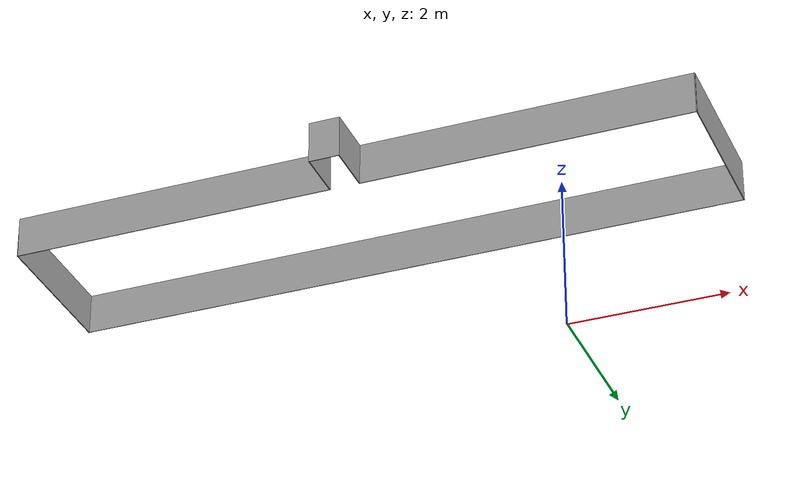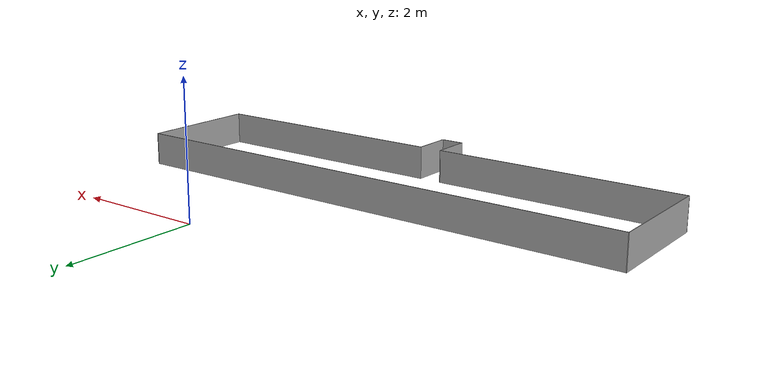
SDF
<?xml version='1.0'?>
<sdf version='1.6'>
  <model name='single_parking_space'>
    <pose frame=''>-1.335 -3.09483 0 0 -0 0</pose>
    <link name='Wall_12'>
      <collision name='Wall_12_Collision'>
        <geometry>
          <box>
            <size>1.86 0.01 0.5</size>
          </box>
        </geometry>
        <pose frame=''>0 0 0.25 0 -0 0</pose>
      </collision>
      <visual name='Wall_12_Visual'>
        <pose frame=''>0 0 0.25 0 -0 0</pose>
        <geometry>
          <box>
            <size>1.86 0.01 0.5</size>
          </box>
        </geometry>
        <material>
          <script>
            <uri>file://media/materials/scripts/gazebo.material</uri>
            <name>Gazebo/Grey</name>
          </script>
          <ambient>1 1 1 1</ambient>
        </material>
        <meta>
          <layer>0</layer>
        </meta>
      </visual>
      <pose frame=''>-4.025 0.299831 0 0 -0 1.5708</pose>
    </link>
    <link name='Wall_13'>
      <collision name='Wall_13_Collision'>
        <geometry>
          <box>
            <size>8.06 0.01 0.5</size>
          </box>
        </geometry>
        <pose frame=''>0 0 0.25 0 -0 0</pose>
      </collision>
      <visual name='Wall_13_Visual'>
        <pose frame=''>0 0 0.25 0 -0 0</pose>
        <geometry>
          <box>
            <size>8.06 0.01 0.5</size>
          </box>
        </geometry>
        <material>
          <script>
            <uri>file://media/materials/scripts/gazebo.material</uri>
            <name>Gazebo/Grey</name>
          </script>
          <ambient>1 1 1 1</ambient>
        </material>
        <meta>
          <layer>0</layer>
        </meta>
      </visual>
      <pose frame=''>0 1.22483 0 0 -0 0</pose>
    </link>
    <link name='Wall_14'>
      <collision name='Wall_14_Collision'>
        <geometry>
          <box>
            <size>1.86068 0.01 0.5</size>
          </box>
        </geometry>
        <pose frame=''>0 0 0.25 0 -0 0</pose>
      </collision>
      <visual name='Wall_14_Visual'>
        <pose frame=''>0 0 0.25 0 -0 0</pose>
        <geometry>
          <box>
            <size>1.86068 0.01 0.5</size>
          </box>
        </geometry>
        <material>
          <script>
            <uri>file://media/materials/scripts/gazebo.material</uri>
            <name>Gazebo/Grey</name>
          </script>
          <ambient>1 1 1 1</ambient>
        </material>
        <meta>
          <layer>0</layer>
        </meta>
      </visual>
      <pose frame=''>4.025 0.299831 0 0 -0 -1.5708</pose>
    </link>
    <link name='Wall_4'>
      <collision name='Wall_4_Collision'>
        <geometry>
          <box>
            <size>3.86 0.01 0.5</size>
          </box>
        </geometry>
        <pose frame=''>0 0 0.25 0 -0 0</pose>
      </collision>
      <visual name='Wall_4_Visual'>
        <pose frame=''>0 0 0.25 0 -0 0</pose>
        <geometry>
          <box>
            <size>3.86 0.01 0.5</size>
          </box>
        </geometry>
        <material>
          <script>
            <uri>file://media/materials/scripts/gazebo.material</uri>
            <name>Gazebo/Grey</name>
          </script>
          <ambient>1 1 1 1</ambient>
        </material>
        <meta>
          <layer>0</layer>
        </meta>
      </visual>
      <pose frame=''>-2.1 -0.625169 0 0 -0 0</pose>
    </link>
    <link name='Wall_5'>
      <collision name='Wall_5_Collision'>
        <geometry>
          <box>
            <size>0.61 0.01 0.5</size>
          </box>
        </geometry>
        <pose frame=''>0 0 0.25 0 -0 0</pose>
      </collision>
      <visual name='Wall_5_Visual'>
        <pose frame=''>0 0 0.25 0 -0 0</pose>
        <geometry>
          <box>
            <size>0.61 0.01 0.5</size>
          </box>
        </geometry>
        <material>
          <script>
            <uri>file://media/materials/scripts/gazebo.material</uri>
            <name>Gazebo/Grey</name>
          </script>
          <ambient>1 1 1 1</ambient>
        </material>
        <meta>
          <layer>0</layer>
        </meta>
      </visual>
      <pose frame=''>-0.175 -0.925169 0 0 -0 -1.5708</pose>
    </link>
    <link name='Wall_6'>
      <collision name='Wall_6_Collision'>
        <geometry>
          <box>
            <size>0.36 0.01 0.5</size>
          </box>
        </geometry>
        <pose frame=''>0 0 0.25 0 -0 0</pose>
      </collision>
      <visual name='Wall_6_Visual'>
        <pose frame=''>0 0 0.25 0 -0 0</pose>
        <geometry>
          <box>
            <size>0.36 0.01 0.5</size>
          </box>
        </geometry>
        <material>
          <script>
            <uri>file://media/materials/scripts/gazebo.material</uri>
            <name>Gazebo/Grey</name>
          </script>
          <ambient>1 1 1 1</ambient>
        </material>
        <meta>
          <layer>0</layer>
        </meta>
      </visual>
      <pose frame=''>0 -1.22517 0 0 -0 0</pose>
    </link>
    <link name='Wall_7'>
      <collision name='Wall_7_Collision'>
        <geometry>
          <box>
            <size>0.61 0.01 0.5</size>
          </box>
        </geometry>
        <pose frame=''>0 0 0.25 0 -0 0</pose>
      </collision>
      <visual name='Wall_7_Visual'>
        <pose frame=''>0 0 0.25 0 -0 0</pose>
        <geometry>
          <box>
            <size>0.61 0.01 0.5</size>
          </box>
        </geometry>
        <material>
          <script>
            <uri>file://media/materials/scripts/gazebo.material</uri>
            <name>Gazebo/Grey</name>
          </script>
          <ambient>1 1 1 1</ambient>
        </material>
        <meta>
          <layer>0</layer>
        </meta>
      </visual>
      <pose frame=''>0.175 -0.925169 0 0 -0 1.5708</pose>
    </link>
    <link name='Wall_8'>
      <collision name='Wall_8_Collision'>
        <geometry>
          <box>
            <size>3.86 0.01 0.5</size>
          </box>
        </geometry>
        <pose frame=''>0 0 0.25 0 -0 0</pose>
      </collision>
      <visual name='Wall_8_Visual'>
        <pose frame=''>0 0 0.25 0 -0 0</pose>
        <geometry>
          <box>
            <size>3.86 0.01 0.5</size>
          </box>
        </geometry>
        <material>
          <script>
            <uri>file://media/materials/scripts/gazebo.material</uri>
            <name>Gazebo/Grey</name>
          </script>
          <ambient>1 1 1 1</ambient>
        </material>
        <meta>
          <layer>0</layer>
        </meta>
      </visual>
      <pose frame=''>2.1 -0.625169 0 0 -0 0</pose>
    </link>
    <static>1</static>
  </model>
</sdf>
